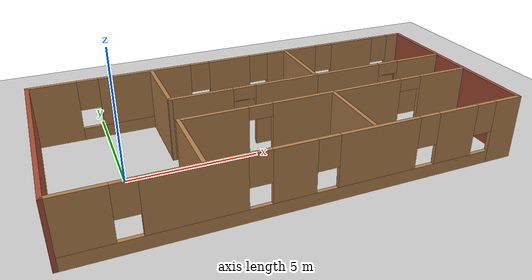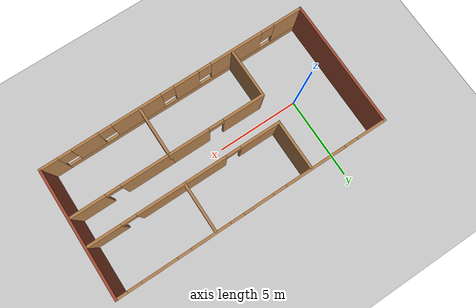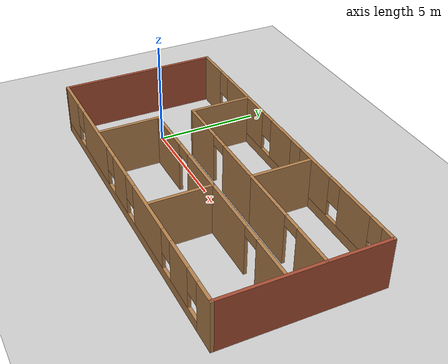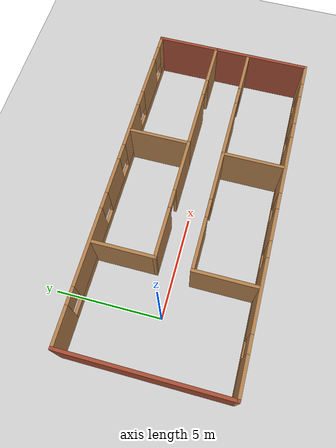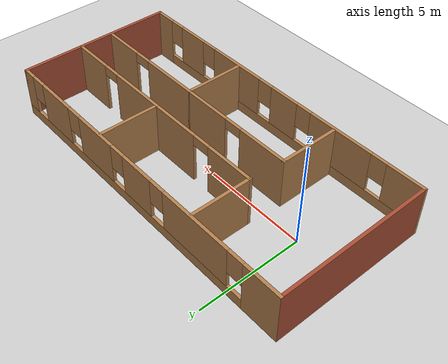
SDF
<sdf version="1.7">
 <world name="default">
  <light name="sun" type="directional">
   <pose>0 0 10 0 -0 0</pose>
   <diffuse>0.8 0.8 0.8 1</diffuse>
   <specular>0.2 0.2 0.2 1</specular>
   <attenuation>
    <range>1000</range>
    <constant>0.9</constant>
    <linear>0.01</linear>
    <quadratic>0.001</quadratic>
   </attenuation>
   <direction>-0.5 0.1 -0.9</direction>
   <spot><inner_angle>0</inner_angle><outer_angle>0</outer_angle><falloff>0</falloff></spot>
  </light>
  <model name="ground_plane">
   <static>1</static>
   <link name="link">
    <collision name="collision">
     <geometry><plane><normal>0 0 1</normal><size>100 100</size></plane></geometry>
     <surface><friction><ode><mu>100</mu><mu2>50</mu2></ode></friction></surface>
    </collision>
    <visual name="visual">
     <cast_shadows>0</cast_shadows>
     <geometry><plane><normal>0 0 1</normal><size>100 100</size></plane></geometry>
     <material>
      <script><uri>file://media/materials/scripts/gazebo.material</uri><name>Gazebo/Grey</name></script>
     </material>
    </visual>
   </link>
  </model>
  <gravity>0 0 -9.8</gravity>
  <magnetic_field>6e-06 2.3e-05 -4.2e-05</magnetic_field>
  <atmosphere type="adiabatic"/>
  <physics type="ode">
   <max_step_size>0.001</max_step_size>
   <real_time_factor>1</real_time_factor>
   <real_time_update_rate>1000</real_time_update_rate>
  </physics>
  <scene><ambient>0.4 0.4 0.4 1</ambient><background>0.7 0.7 0.7 1</background><shadows>1</shadows></scene>
  <spherical_coordinates>
   <surface_model>EARTH_WGS84</surface_model>
   <latitude_deg>0</latitude_deg>
   <longitude_deg>0</longitude_deg>
   <elevation>0</elevation>
   <heading_deg>0</heading_deg>
  </spherical_coordinates>
  <model name="yyy">
   <pose>5.5162 0.336916 0 0 -0 0</pose>
   <link name="Wall_23">
    <pose>0 3.40098 0 0 -0 0</pose>
    <visual name="Wall_23_Visual_0">
     <pose>-7.32544 0 1.25 0 -0 0</pose>
     <geometry><box><size>1.84912 0.15 2.5</size></box></geometry>
     <material>
      <script><uri>file://media/materials/scripts/gazebo.material</uri><name>Gazebo/Wood</name></script>
      <ambient>1 1 1 1</ambient>
     </material>
     <meta><layer>0</layer></meta>
    </visual>
    <collision name="Wall_23_Collision_0">
     <geometry><box><size>1.84912 0.15 2.5</size></box></geometry>
     <pose>-7.32544 0 1.25 0 -0 0</pose>
    </collision>
    <visual name="Wall_23_Visual_1">
     <pose>0.924558 0 0.25 0 -0 0</pose>
     <geometry><box><size>14.6509 0.15 0.5</size></box></geometry>
     <material>
      <script><uri>file://media/materials/scripts/gazebo.material</uri><name>Gazebo/Wood</name></script>
      <ambient>1 1 1 1</ambient>
     </material>
     <meta><layer>0</layer></meta>
    </visual>
    <collision name="Wall_23_Collision_1">
     <geometry><box><size>14.6509 0.15 0.5</size></box></geometry>
     <pose>0.924558 0 0.25 0 -0 0</pose>
    </collision>
    <visual name="Wall_23_Visual_2">
     <pose>-3.75822 0 1.5 0 -0 0</pose>
     <geometry><box><size>3.68533 0.15 2</size></box></geometry>
     <material>
      <script><uri>file://media/materials/scripts/gazebo.material</uri><name>Gazebo/Wood</name></script>
      <ambient>1 1 1 1</ambient>
     </material>
     <meta><layer>0</layer></meta>
    </visual>
    <collision name="Wall_23_Collision_2">
     <geometry><box><size>3.68533 0.15 2</size></box></geometry>
     <pose>-3.75822 0 1.5 0 -0 0</pose>
    </collision>
    <visual name="Wall_23_Visual_3">
     <pose>-0.218232 0 1.5 0 -0 0</pose>
     <geometry><box><size>1.79465 0.15 2</size></box></geometry>
     <material>
      <script><uri>file://media/materials/scripts/gazebo.material</uri><name>Gazebo/Wood</name></script>
      <ambient>1 1 1 1</ambient>
     </material>
     <meta><layer>0</layer></meta>
    </visual>
    <collision name="Wall_23_Collision_3">
     <geometry><box><size>1.79465 0.15 2</size></box></geometry>
     <pose>-0.218232 0 1.5 0 -0 0</pose>
    </collision>
    <visual name="Wall_23_Visual_4">
     <pose>2.64795 0 1.5 0 -0 0</pose>
     <geometry><box><size>2.33772 0.15 2</size></box></geometry>
     <material>
      <script><uri>file://media/materials/scripts/gazebo.material</uri><name>Gazebo/Wood</name></script>
      <ambient>1 1 1 1</ambient>
     </material>
     <meta><layer>0</layer></meta>
    </visual>
    <collision name="Wall_23_Collision_4">
     <geometry><box><size>2.33772 0.15 2</size></box></geometry>
     <pose>2.64795 0 1.5 0 -0 0</pose>
    </collision>
    <visual name="Wall_23_Visual_5">
     <pose>5.66499 0 1.5 0 -0 0</pose>
     <geometry><box><size>2.09635 0.15 2</size></box></geometry>
     <material>
      <script><uri>file://media/materials/scripts/gazebo.material</uri><name>Gazebo/Wood</name></script>
      <ambient>1 1 1 1</ambient>
     </material>
     <meta><layer>0</layer></meta>
    </visual>
    <collision name="Wall_23_Collision_5">
     <geometry><box><size>2.09635 0.15 2</size></box></geometry>
     <pose>5.66499 0 1.5 0 -0 0</pose>
    </collision>
    <visual name="Wall_23_Visual_6">
     <pose>7.88158 0 1.5 0 -0 0</pose>
     <geometry><box><size>0.736835 0.15 2</size></box></geometry>
     <material>
      <script><uri>file://media/materials/scripts/gazebo.material</uri><name>Gazebo/Wood</name></script>
      <ambient>1 1 1 1</ambient>
     </material>
     <meta><layer>0</layer></meta>
    </visual>
    <collision name="Wall_23_Collision_6">
     <geometry><box><size>0.736835 0.15 2</size></box></geometry>
     <pose>7.88158 0 1.5 0 -0 0</pose>
    </collision>
    <visual name="Wall_23_Visual_7">
     <pose>-6.00088 0 1.9 0 -0 0</pose>
     <geometry><box><size>0.8 0.15 1.2</size></box></geometry>
     <material>
      <script><uri>file://media/materials/scripts/gazebo.material</uri><name>Gazebo/Wood</name></script>
      <ambient>1 1 1 1</ambient>
     </material>
     <meta><layer>0</layer></meta>
    </visual>
    <collision name="Wall_23_Collision_7">
     <geometry><box><size>0.8 0.15 1.2</size></box></geometry>
     <pose>-6.00088 0 1.9 0 -0 0</pose>
    </collision>
    <visual name="Wall_23_Visual_8">
     <pose>-1.51556 0 1.9 0 -0 0</pose>
     <geometry><box><size>0.8 0.15 1.2</size></box></geometry>
     <material>
      <script><uri>file://media/materials/scripts/gazebo.material</uri><name>Gazebo/Wood</name></script>
      <ambient>1 1 1 1</ambient>
     </material>
     <meta><layer>0</layer></meta>
    </visual>
    <collision name="Wall_23_Collision_8">
     <geometry><box><size>0.8 0.15 1.2</size></box></geometry>
     <pose>-1.51556 0 1.9 0 -0 0</pose>
    </collision>
    <visual name="Wall_23_Visual_9">
     <pose>1.07909 0 1.9 0 -0 0</pose>
     <geometry><box><size>0.8 0.15 1.2</size></box></geometry>
     <material>
      <script><uri>file://media/materials/scripts/gazebo.material</uri><name>Gazebo/Wood</name></script>
      <ambient>1 1 1 1</ambient>
     </material>
     <meta><layer>0</layer></meta>
    </visual>
    <collision name="Wall_23_Collision_9">
     <geometry><box><size>0.8 0.15 1.2</size></box></geometry>
     <pose>1.07909 0 1.9 0 -0 0</pose>
    </collision>
    <visual name="Wall_23_Visual_10">
     <pose>4.21681 0 1.9 0 -0 0</pose>
     <geometry><box><size>0.8 0.15 1.2</size></box></geometry>
     <material>
      <script><uri>file://media/materials/scripts/gazebo.material</uri><name>Gazebo/Wood</name></script>
      <ambient>1 1 1 1</ambient>
     </material>
     <meta><layer>0</layer></meta>
    </visual>
    <collision name="Wall_23_Collision_10">
     <geometry><box><size>0.8 0.15 1.2</size></box></geometry>
     <pose>4.21681 0 1.9 0 -0 0</pose>
    </collision>
    <visual name="Wall_23_Visual_11">
     <pose>7.11317 0 1.9 0 -0 0</pose>
     <geometry><box><size>0.8 0.15 1.2</size></box></geometry>
     <material>
      <script><uri>file://media/materials/scripts/gazebo.material</uri><name>Gazebo/Wood</name></script>
      <ambient>1 1 1 1</ambient>
     </material>
     <meta><layer>0</layer></meta>
    </visual>
    <collision name="Wall_23_Collision_11">
     <geometry><box><size>0.8 0.15 1.2</size></box></geometry>
     <pose>7.11317 0 1.9 0 -0 0</pose>
    </collision>
   </link>
   <link name="Wall_24">
    <collision name="Wall_24_Collision">
     <geometry><box><size>7.75 0.15 2.5</size></box></geometry>
     <pose>0 0 1.25 0 -0 0</pose>
    </collision>
    <visual name="Wall_24_Visual">
     <pose>0 0 1.25 0 -0 0</pose>
     <geometry><box><size>7.75 0.15 2.5</size></box></geometry>
     <material>
      <script><uri>file://media/materials/scripts/gazebo.material</uri><name>Gazebo/Bricks</name></script>
      <ambient>1 1 1 1</ambient>
     </material>
     <meta><layer>0</layer></meta>
    </visual>
    <pose>8.175 -0.399022 0 0 -0 -1.5708</pose>
   </link>
   <link name="Wall_25">
    <pose>0 -4.19902 0 0 -0 3.14159</pose>
    <visual name="Wall_25_Visual_0">
     <pose>-7.68045 0 1.25 0 -0 0</pose>
     <geometry><box><size>1.13911 0.15 2.5</size></box></geometry>
     <material>
      <script><uri>file://media/materials/scripts/gazebo.material</uri><name>Gazebo/Wood</name></script>
      <ambient>1 1 1 1</ambient>
     </material>
     <meta><layer>0</layer></meta>
    </visual>
    <collision name="Wall_25_Collision_0">
     <geometry><box><size>1.13911 0.15 2.5</size></box></geometry>
     <pose>-7.68045 0 1.25 0 -0 0</pose>
    </collision>
    <visual name="Wall_25_Visual_1">
     <pose>0.569553 0 0.25 0 -0 0</pose>
     <geometry><box><size>15.3609 0.15 0.5</size></box></geometry>
     <material>
      <script><uri>file://media/materials/scripts/gazebo.material</uri><name>Gazebo/Wood</name></script>
      <ambient>1 1 1 1</ambient>
     </material>
     <meta><layer>0</layer></meta>
    </visual>
    <collision name="Wall_25_Collision_1">
     <geometry><box><size>15.3609 0.15 0.5</size></box></geometry>
     <pose>0.569553 0 0.25 0 -0 0</pose>
    </collision>
    <visual name="Wall_25_Visual_2">
     <pose>-5.50408 0 1.5 0 -0 0</pose>
     <geometry><box><size>1.61363 0.15 2</size></box></geometry>
     <material>
      <script><uri>file://media/materials/scripts/gazebo.material</uri><name>Gazebo/Wood</name></script>
      <ambient>1 1 1 1</ambient>
     </material>
     <meta><layer>0</layer></meta>
    </visual>
    <collision name="Wall_25_Collision_2">
     <geometry><box><size>1.61363 0.15 2</size></box></geometry>
     <pose>-5.50408 0 1.5 0 -0 0</pose>
    </collision>
    <visual name="Wall_25_Visual_3">
     <pose>-2.37642 0 1.5 0 -0 0</pose>
     <geometry><box><size>3.04169 0.15 2</size></box></geometry>
     <material>
      <script><uri>file://media/materials/scripts/gazebo.material</uri><name>Gazebo/Wood</name></script>
      <ambient>1 1 1 1</ambient>
     </material>
     <meta><layer>0</layer></meta>
    </visual>
    <collision name="Wall_25_Collision_3">
     <geometry><box><size>3.04169 0.15 2</size></box></geometry>
     <pose>-2.37642 0 1.5 0 -0 0</pose>
    </collision>
    <visual name="Wall_25_Visual_4">
     <pose>0.721071 0 1.5 0 -0 0</pose>
     <geometry><box><size>1.55329 0.15 2</size></box></geometry>
     <material>
      <script><uri>file://media/materials/scripts/gazebo.material</uri><name>Gazebo/Wood</name></script>
      <ambient>1 1 1 1</ambient>
     </material>
     <meta><layer>0</layer></meta>
    </visual>
    <collision name="Wall_25_Collision_4">
     <geometry><box><size>1.55329 0.15 2</size></box></geometry>
     <pose>0.721071 0 1.5 0 -0 0</pose>
    </collision>
    <visual name="Wall_25_Visual_5">
     <pose>3.9493 0 1.5 0 -0 0</pose>
     <geometry><box><size>3.30317 0.15 2</size></box></geometry>
     <material>
      <script><uri>file://media/materials/scripts/gazebo.material</uri><name>Gazebo/Wood</name></script>
      <ambient>1 1 1 1</ambient>
     </material>
     <meta><layer>0</layer></meta>
    </visual>
    <collision name="Wall_25_Collision_5">
     <geometry><box><size>3.30317 0.15 2</size></box></geometry>
     <pose>3.9493 0 1.5 0 -0 0</pose>
    </collision>
    <visual name="Wall_25_Visual_6">
     <pose>7.32544 0 1.5 0 -0 0</pose>
     <geometry><box><size>1.84912 0.15 2</size></box></geometry>
     <material>
      <script><uri>file://media/materials/scripts/gazebo.material</uri><name>Gazebo/Wood</name></script>
      <ambient>1 1 1 1</ambient>
     </material>
     <meta><layer>0</layer></meta>
    </visual>
    <collision name="Wall_25_Collision_6">
     <geometry><box><size>1.84912 0.15 2</size></box></geometry>
     <pose>7.32544 0 1.5 0 -0 0</pose>
    </collision>
    <visual name="Wall_25_Visual_7">
     <pose>-6.71089 0 1.9 0 -0 0</pose>
     <geometry><box><size>0.8 0.15 1.2</size></box></geometry>
     <material>
      <script><uri>file://media/materials/scripts/gazebo.material</uri><name>Gazebo/Wood</name></script>
      <ambient>1 1 1 1</ambient>
     </material>
     <meta><layer>0</layer></meta>
    </visual>
    <collision name="Wall_25_Collision_7">
     <geometry><box><size>0.8 0.15 1.2</size></box></geometry>
     <pose>-6.71089 0 1.9 0 -0 0</pose>
    </collision>
    <visual name="Wall_25_Visual_8">
     <pose>-4.29727 0 1.9 0 -0 0</pose>
     <geometry><box><size>0.8 0.15 1.2</size></box></geometry>
     <material>
      <script><uri>file://media/materials/scripts/gazebo.material</uri><name>Gazebo/Wood</name></script>
      <ambient>1 1 1 1</ambient>
     </material>
     <meta><layer>0</layer></meta>
    </visual>
    <collision name="Wall_25_Collision_8">
     <geometry><box><size>0.8 0.15 1.2</size></box></geometry>
     <pose>-4.29727 0 1.9 0 -0 0</pose>
    </collision>
    <visual name="Wall_25_Visual_9">
     <pose>-0.455572 0 1.9 0 -0 0</pose>
     <geometry><box><size>0.8 0.15 1.2</size></box></geometry>
     <material>
      <script><uri>file://media/materials/scripts/gazebo.material</uri><name>Gazebo/Wood</name></script>
      <ambient>1 1 1 1</ambient>
     </material>
     <meta><layer>0</layer></meta>
    </visual>
    <collision name="Wall_25_Collision_9">
     <geometry><box><size>0.8 0.15 1.2</size></box></geometry>
     <pose>-0.455572 0 1.9 0 -0 0</pose>
    </collision>
    <visual name="Wall_25_Visual_10">
     <pose>1.89772 0 1.9 0 -0 0</pose>
     <geometry><box><size>0.8 0.15 1.2</size></box></geometry>
     <material>
      <script><uri>file://media/materials/scripts/gazebo.material</uri><name>Gazebo/Wood</name></script>
      <ambient>1 1 1 1</ambient>
     </material>
     <meta><layer>0</layer></meta>
    </visual>
    <collision name="Wall_25_Collision_10">
     <geometry><box><size>0.8 0.15 1.2</size></box></geometry>
     <pose>1.89772 0 1.9 0 -0 0</pose>
    </collision>
    <visual name="Wall_25_Visual_11">
     <pose>6.00088 0 1.9 0 -0 0</pose>
     <geometry><box><size>0.8 0.15 1.2</size></box></geometry>
     <material>
      <script><uri>file://media/materials/scripts/gazebo.material</uri><name>Gazebo/Wood</name></script>
      <ambient>1 1 1 1</ambient>
     </material>
     <meta><layer>0</layer></meta>
    </visual>
    <collision name="Wall_25_Collision_11">
     <geometry><box><size>0.8 0.15 1.2</size></box></geometry>
     <pose>6.00088 0 1.9 0 -0 0</pose>
    </collision>
   </link>
   <link name="Wall_26">
    <collision name="Wall_26_Collision">
     <geometry><box><size>7.75 0.15 2.5</size></box></geometry>
     <pose>0 0 1.25 0 -0 0</pose>
    </collision>
    <visual name="Wall_26_Visual">
     <pose>0 0 1.25 0 -0 0</pose>
     <geometry><box><size>7.75 0.15 2.5</size></box></geometry>
     <material>
      <script><uri>file://media/materials/scripts/gazebo.material</uri><name>Gazebo/Bricks</name></script>
      <ambient>1 1 1 1</ambient>
     </material>
     <meta><layer>0</layer></meta>
    </visual>
    <pose>-8.175 -0.399022 0 0 -0 1.5708</pose>
   </link>
   <link name="Wall_36">
    <pose>5.24108 0.46219 0 0 -0 0</pose>
    <visual name="Wall_36_Visual_0">
     <pose>-1.49517 0 1.25 0 -0 0</pose>
     <geometry><box><size>2.94932 0.15 2.5</size></box></geometry>
     <material>
      <script><uri>file://media/materials/scripts/gazebo.material</uri><name>Gazebo/Wood</name></script>
      <ambient>1 1 1 1</ambient>
     </material>
     <meta><layer>0</layer></meta>
    </visual>
    <collision name="Wall_36_Collision_0">
     <geometry><box><size>2.94932 0.15 2.5</size></box></geometry>
     <pose>-1.49517 0 1.25 0 -0 0</pose>
    </collision>
    <visual name="Wall_36_Visual_1">
     <pose>1.92466 0 1.25 0 -0 0</pose>
     <geometry><box><size>2.09034 0.15 2.5</size></box></geometry>
     <material>
      <script><uri>file://media/materials/scripts/gazebo.material</uri><name>Gazebo/Wood</name></script>
      <ambient>1 1 1 1</ambient>
     </material>
     <meta><layer>0</layer></meta>
    </visual>
    <collision name="Wall_36_Collision_1">
     <geometry><box><size>2.09034 0.15 2.5</size></box></geometry>
     <pose>1.92466 0 1.25 0 -0 0</pose>
    </collision>
    <visual name="Wall_36_Visual_2">
     <pose>0.42949 0 2.25 0 -0 0</pose>
     <geometry><box><size>0.9 0.15 0.5</size></box></geometry>
     <material>
      <script><uri>file://media/materials/scripts/gazebo.material</uri><name>Gazebo/Wood</name></script>
      <ambient>1 1 1 1</ambient>
     </material>
     <meta><layer>0</layer></meta>
    </visual>
    <collision name="Wall_36_Collision_2">
     <geometry><box><size>0.9 0.15 0.5</size></box></geometry>
     <pose>0.42949 0 2.25 0 -0 0</pose>
    </collision>
   </link>
   <link name="Wall_43">
    <collision name="Wall_43_Collision">
     <geometry><box><size>3 0.15 2.5</size></box></geometry>
     <pose>0 0 1.25 0 -0 0</pose>
    </collision>
    <visual name="Wall_43_Visual">
     <pose>0 0 1.25 0 -0 0</pose>
     <geometry><box><size>3 0.15 2.5</size></box></geometry>
     <material>
      <script><uri>file://media/materials/scripts/gazebo.material</uri><name>Gazebo/Wood</name></script>
      <ambient>1 1 1 1</ambient>
     </material>
     <meta><layer>0</layer></meta>
    </visual>
    <pose>-3.6476 -2.65848 0 0 -0 -1.5708</pose>
   </link>
   <link name="Wall_45">
    <pose>-0.722596 -1.23348 0 0 -0 0</pose>
    <visual name="Wall_45_Visual_0">
     <pose>-1.70915 0 1.25 0 -0 0</pose>
     <geometry><box><size>2.58169 0.15 2.5</size></box></geometry>
     <material>
      <script><uri>file://media/materials/scripts/gazebo.material</uri><name>Gazebo/Wood</name></script>
      <ambient>1 1 1 1</ambient>
     </material>
     <meta><layer>0</layer></meta>
    </visual>
    <collision name="Wall_45_Collision_0">
     <geometry><box><size>2.58169 0.15 2.5</size></box></geometry>
     <pose>-1.70915 0 1.25 0 -0 0</pose>
    </collision>
    <visual name="Wall_45_Visual_1">
     <pose>1.74085 0 1.25 0 -0 0</pose>
     <geometry><box><size>2.5183 0.15 2.5</size></box></geometry>
     <material>
      <script><uri>file://media/materials/scripts/gazebo.material</uri><name>Gazebo/Wood</name></script>
      <ambient>1 1 1 1</ambient>
     </material>
     <meta><layer>0</layer></meta>
    </visual>
    <collision name="Wall_45_Collision_1">
     <geometry><box><size>2.5183 0.15 2.5</size></box></geometry>
     <pose>1.74085 0 1.25 0 -0 0</pose>
    </collision>
    <visual name="Wall_45_Visual_2">
     <pose>0.031695 0 2.25 0 -0 0</pose>
     <geometry><box><size>0.9 0.15 0.5</size></box></geometry>
     <material>
      <script><uri>file://media/materials/scripts/gazebo.material</uri><name>Gazebo/Wood</name></script>
      <ambient>1 1 1 1</ambient>
     </material>
     <meta><layer>0</layer></meta>
    </visual>
    <collision name="Wall_45_Collision_2">
     <geometry><box><size>0.9 0.15 0.5</size></box></geometry>
     <pose>0.031695 0 2.25 0 -0 0</pose>
    </collision>
   </link>
   <link name="Wall_47">
    <collision name="Wall_47_Collision">
     <geometry><box><size>3 0.15 2.5</size></box></geometry>
     <pose>0 0 1.25 0 -0 0</pose>
    </collision>
    <visual name="Wall_47_Visual">
     <pose>0 0 1.25 0 -0 0</pose>
     <geometry><box><size>3 0.15 2.5</size></box></geometry>
     <material>
      <script><uri>file://media/materials/scripts/gazebo.material</uri><name>Gazebo/Wood</name></script>
      <ambient>1 1 1 1</ambient>
     </material>
     <meta><layer>0</layer></meta>
    </visual>
    <pose>2.2024 -2.65848 0 0 -0 -1.5708</pose>
   </link>
   <link name="Wall_49">
    <pose>5.1274 -1.23348 0 0 -0 0</pose>
    <visual name="Wall_49_Visual_0">
     <pose>-1.49643 0 1.25 0 -0 0</pose>
     <geometry><box><size>3.00713 0.15 2.5</size></box></geometry>
     <material>
      <script><uri>file://media/materials/scripts/gazebo.material</uri><name>Gazebo/Wood</name></script>
      <ambient>1 1 1 1</ambient>
     </material>
     <meta><layer>0</layer></meta>
    </visual>
    <collision name="Wall_49_Collision_0">
     <geometry><box><size>3.00713 0.15 2.5</size></box></geometry>
     <pose>-1.49643 0 1.25 0 -0 0</pose>
    </collision>
    <visual name="Wall_49_Visual_1">
     <pose>1.95356 0 1.25 0 -0 0</pose>
     <geometry><box><size>2.09287 0.15 2.5</size></box></geometry>
     <material>
      <script><uri>file://media/materials/scripts/gazebo.material</uri><name>Gazebo/Wood</name></script>
      <ambient>1 1 1 1</ambient>
     </material>
     <meta><layer>0</layer></meta>
    </visual>
    <collision name="Wall_49_Collision_1">
     <geometry><box><size>2.09287 0.15 2.5</size></box></geometry>
     <pose>1.95356 0 1.25 0 -0 0</pose>
    </collision>
    <visual name="Wall_49_Visual_2">
     <pose>0.457129 0 2.25 0 -0 0</pose>
     <geometry><box><size>0.9 0.15 0.5</size></box></geometry>
     <material>
      <script><uri>file://media/materials/scripts/gazebo.material</uri><name>Gazebo/Wood</name></script>
      <ambient>1 1 1 1</ambient>
     </material>
     <meta><layer>0</layer></meta>
    </visual>
    <collision name="Wall_49_Collision_2">
     <geometry><box><size>0.9 0.15 0.5</size></box></geometry>
     <pose>0.457129 0 2.25 0 -0 0</pose>
    </collision>
   </link>
   <link name="Wall_53">
    <collision name="Wall_53_Collision">
     <geometry><box><size>3 0.15 2.5</size></box></geometry>
     <pose>0 0 1.25 0 -0 0</pose>
    </collision>
    <visual name="Wall_53_Visual">
     <pose>0 0 1.25 0 -0 0</pose>
     <geometry><box><size>3 0.15 2.5</size></box></geometry>
     <material>
      <script><uri>file://media/materials/scripts/gazebo.material</uri><name>Gazebo/Wood</name></script>
      <ambient>1 1 1 1</ambient>
     </material>
     <meta><layer>0</layer></meta>
    </visual>
    <pose>2.34625 1.88719 0 0 -0 1.5708</pose>
   </link>
   <link name="Wall_55">
    <pose>-0.578751 0.46219 0 0 -0 3.14159</pose>
    <visual name="Wall_55_Visual_0">
     <pose>-1.68904 0 1.25 0 -0 0</pose>
     <geometry><box><size>2.62192 0.15 2.5</size></box></geometry>
     <material>
      <script><uri>file://media/materials/scripts/gazebo.material</uri><name>Gazebo/Wood</name></script>
      <ambient>1 1 1 1</ambient>
     </material>
     <meta><layer>0</layer></meta>
    </visual>
    <collision name="Wall_55_Collision_0">
     <geometry><box><size>2.62192 0.15 2.5</size></box></geometry>
     <pose>-1.68904 0 1.25 0 -0 0</pose>
    </collision>
    <visual name="Wall_55_Visual_1">
     <pose>1.76096 0 1.25 0 -0 0</pose>
     <geometry><box><size>2.47808 0.15 2.5</size></box></geometry>
     <material>
      <script><uri>file://media/materials/scripts/gazebo.material</uri><name>Gazebo/Wood</name></script>
      <ambient>1 1 1 1</ambient>
     </material>
     <meta><layer>0</layer></meta>
    </visual>
    <collision name="Wall_55_Collision_1">
     <geometry><box><size>2.47808 0.15 2.5</size></box></geometry>
     <pose>1.76096 0 1.25 0 -0 0</pose>
    </collision>
    <visual name="Wall_55_Visual_2">
     <pose>0.071922 0 2.25 0 -0 0</pose>
     <geometry><box><size>0.9 0.15 0.5</size></box></geometry>
     <material>
      <script><uri>file://media/materials/scripts/gazebo.material</uri><name>Gazebo/Wood</name></script>
      <ambient>1 1 1 1</ambient>
     </material>
     <meta><layer>0</layer></meta>
    </visual>
    <collision name="Wall_55_Collision_2">
     <geometry><box><size>0.9 0.15 0.5</size></box></geometry>
     <pose>0.071922 0 2.25 0 -0 0</pose>
    </collision>
   </link>
   <link name="Wall_56">
    <collision name="Wall_56_Collision">
     <geometry><box><size>3 0.15 2.5</size></box></geometry>
     <pose>0 0 1.25 0 -0 0</pose>
    </collision>
    <visual name="Wall_56_Visual">
     <pose>0 0 1.25 0 -0 0</pose>
     <geometry><box><size>3 0.15 2.5</size></box></geometry>
     <material>
      <script><uri>file://media/materials/scripts/gazebo.material</uri><name>Gazebo/Wood</name></script>
      <ambient>1 1 1 1</ambient>
     </material>
     <meta><layer>0</layer></meta>
    </visual>
    <pose>-3.50375 1.88719 0 0 -0 1.5708</pose>
   </link>
   <static>1</static>
  </model>
 </world>
</sdf>
